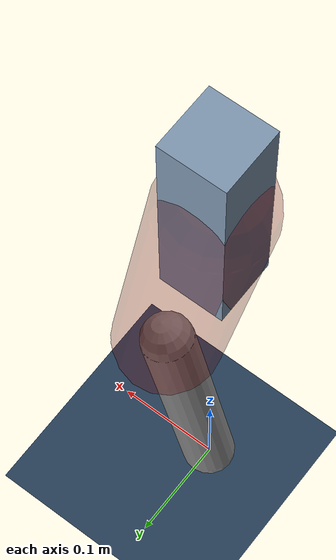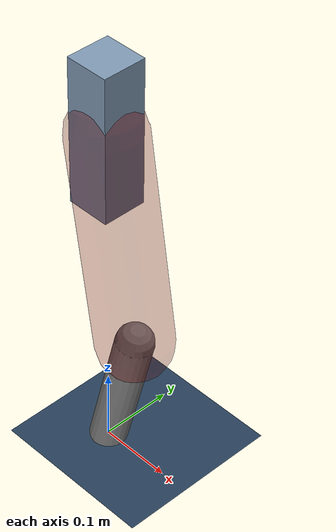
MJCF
<mujoco model="Hopper2D">
	<compiler inertiafromgeom="true" angle="radian" />
	<option timestep="0.001" integrator="implicit" cone="elliptic" solver="Newton" tolerance="1e-10" />

	<default>
		<geom contype="1" conaffinity="1" condim="3" friction="2 0.005 0.0001" solref="0.005 1" />
		<joint limited="true" damping="0.1" />
	</default>

	<asset>
		<texture name="skybox" type="skybox" builtin="gradient" rgb1=".4 .6 .8" rgb2="0 0 0" width="800" height="800" />
		<texture name="grid" type="2d" builtin="checker" rgb1=".1 .2 .3" rgb2=".2 .3 .4" width="300" height="300" mark="edge" markrgb=".2 .3 .4" />
		<material name="ground" texture="grid" texrepeat="1 1" texuniform="true" reflectance="0.1" />
		<material name="leg" rgba="0.5 0.6 0.7 1" />
	</asset>

	<worldbody>

		<geom name="floor" type="plane" size="5 5 0.25" material="ground" />

		<light directional="false" diffuse="0.8 0.8 0.8" specular="0.3 0.3 0.3" pos="0 0 2" dir="0 0 -1" />
		<light mode="targetbodycom" target="base" directional="false" diffuse="0.8 0.8 0.8" specular="0.3 0.3 0.3" pos="0 0 2" dir="0 0 -1" />

		<camera name="fixed" pos="0 -2 1" xyaxes="1 0 0 0 0 1" />
		<camera name="tracking" mode="trackcom" pos="0 -3 1" />

		<body name="root" pos="0 0 0.48196157266794354">
			<joint name="slide_x" type="slide" axis="1 0 0" range="-100 100" />
			<joint name="slide_z" type="slide" axis="0 0 1" range="0 10" />

			<body name="base" pos="0 0 0">
				<geom name="torso" type="box" size="0.03 0.03 0.1" mass="2.093" material="leg" />

				<body name="link1" pos="0 0 0" euler="0 1.4049429682021972 0">
					<joint type="hinge" axis="0 -1 0" pos="0 0 0" name="hinge1" limited="true" range="-3.14 3.14" stiffness="0" damping="0.1" />
					<geom name="thigh" type="capsule" fromto="0 0 0 0.2931109368296976 0 0" size="0.05" rgba="0.5 0 0 0.3" mass="0.9701995294401835" />

					<body name="link2" pos="0.2931109368296976 0 0" euler="0 0.411674485062496 0">
						<joint type="hinge" axis="0 -1 0" pos="0 0 0" name="hinge2" limited="true" range="-3.14 3.14" stiffness="0" damping="0.1" />
						<geom name="shank" type="capsule" fromto="0 0 0 0.19885063583824597 0 0" size="0.025" mass="0.39996557225442136" />

					</body>
				</body>
			</body>
		</body>
	</worldbody>

	<actuator>
		<motor name="torque1" joint="hinge1" ctrlrange="-71.44144453036998 71.44144453036998" ctrllimited="true" gear="1" />
		<motor name="torque2" joint="hinge2" ctrlrange="-64.09811832137612 64.09811832137612" ctrllimited="true" gear="1" />
	</actuator>
</mujoco>
